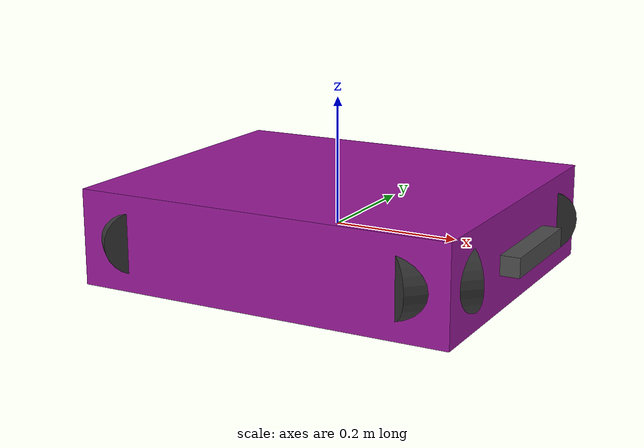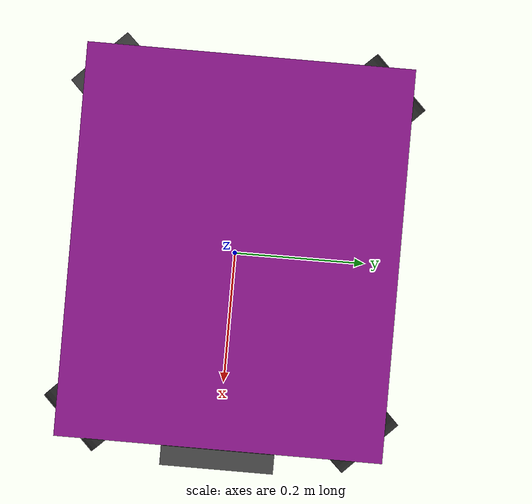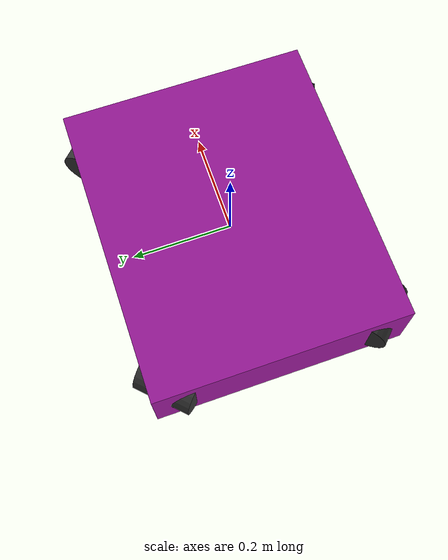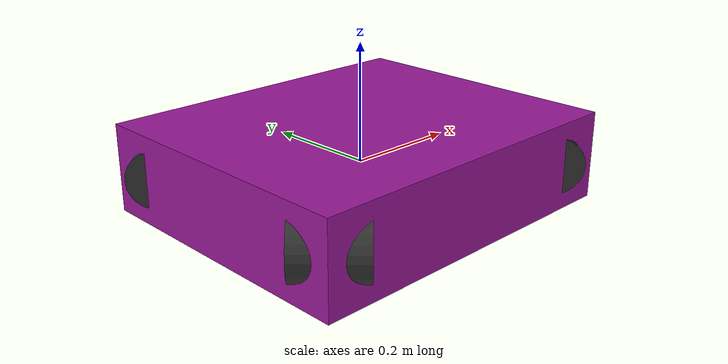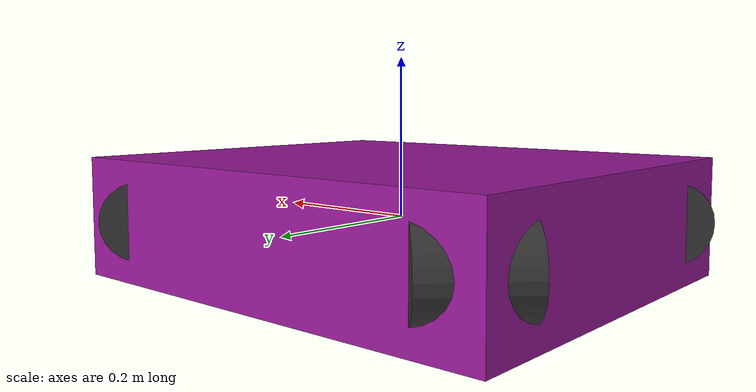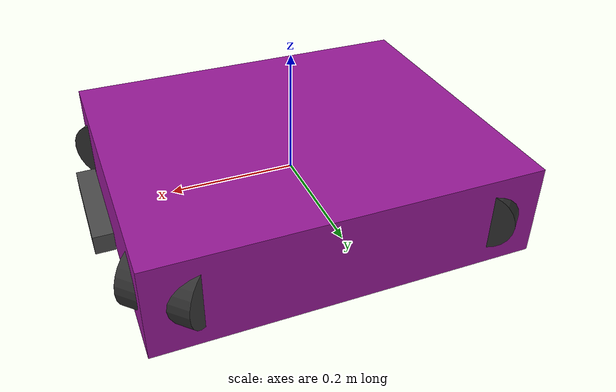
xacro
<?xml version="1.0"?>
<robot name="sunswim" xmlns:xacro="http://www.ros.org/wiki/xacro">
<xacro:arg name="ardusub" default="false"/>
<!--
 ===================== numbers you will edit =====================
-->
<xacro:property name="total_mass" value="15.0"/>
<!-- kg in air, GUESS -->
<xacro:property name="buoyancy_margin" value="0.02"/>
<!-- 2 % positive: floats up slowly, like a real ROV -->
<xacro:property name="com_below_cob" value="0.03"/>
<!--
 m, centre of mass below centre of buoyancy (keeps it upright), GUESS
-->
<xacro:property name="body_length" value="0.60"/>
<xacro:property name="body_width" value="0.50"/>
<xacro:property name="body_height" value="0.15"/>
<!-- Blue Robotics T200-like thruster -->
<xacro:property name="thruster_radius" value="0.04865"/>
<xacro:property name="thruster_length" value="0.1134"/>
<xacro:property name="thruster_mass" value="0.427"/>
<xacro:property name="prop_mass" value="0.05"/>
<xacro:property name="prop_diameter" value="0.076"/>
<!-- m, GUESS -->
<xacro:property name="max_thrust" value="50.0"/>
<!-- N forward, ~5 kgf, GUESS -->
<xacro:property name="min_thrust" value="-40.0"/>
<!-- N reverse, GUESS -->
<!--
 ===================== derived (don't edit) =====================
-->
<xacro:property name="thruster_volume" value="${pi * thruster_radius**2 * thruster_length}"/>
<xacro:property name="thruster_box_side" value="${thruster_radius * pi**0.5}"/>
<!-- side^2 = pi r^2 -->
<xacro:property name="target_volume" value="${total_mass * (1 + buoyancy_margin) / 1000.0}"/>
<xacro:property name="body_collision_height" value="${(target_volume - 8 * thruster_volume) / (body_length * body_width)}"/>
<xacro:property name="camera_mass" value="0.2"/>
<xacro:property name="camera_x" value="${body_length/2 + 0.02}"/>
<xacro:property name="imu_mass" value="0.01"/>
<xacro:property name="imu_x" value="0.1"/>
<xacro:property name="body_mass" value="${total_mass - 8 * (thruster_mass + prop_mass) - camera_mass - imu_mass}"/>
<!--
 trim: shift the body's mass back so camera + IMU up front don't pitch the nose down
-->
<xacro:property name="body_com_x" value="${-(camera_mass * camera_x + imu_mass * imu_x) / body_mass}"/>
<!--
 ===================== macros =====================
-->
<xacro:macro name="box_inertia" params="m x y z ox oz">
    <inertial>
        <origin xyz="${ox} 0 ${oz}" rpy="0 0 0"/>
        <mass value="${m}"/>
        <inertia ixx="${m/12*(y*y+z*z)}" ixy="0" ixz="0" iyy="${m/12*(x*x+z*z)}" iyz="0" izz="${m/12*(x*x+y*y)}"/>
    </inertial>
</xacro:macro>
<xacro:macro name="cyl_inertia" params="m r h">
    <inertial>
        <mass value="${m}"/>
        <inertia ixx="${m/12*(3*r*r+h*h)}" ixy="0" ixz="0" iyy="${m/12*(3*r*r+h*h)}" iyz="0" izz="${m/2*r*r}"/>
    </inertial>
</xacro:macro>
<!-- ===================== body ===================== -->
<link name="base_link">
    <visual>
        <geometry>
            <box size="${body_length} ${body_width} ${body_height}"/>
        </geometry>
        <material name="Purple">
            <color rgba="0.6 0.1 0.6 1.0"/>
        </material>
    </visual>
    <!--
    thin slab: its volume (not its look) sets the buoyancy
    -->
    <collision>
        <geometry>
            <box size="${body_length} ${body_width} ${body_collision_height}"/>
        </geometry>
    </collision>
    <!--
    mass sits a little below the middle so the ROV self-rights
    -->
    <xacro:box_inertia m="${body_mass}" x="${body_length}" y="${body_width}" z="${body_height}" ox="${body_com_x}" oz="${-com_below_cob}"/>
</link>

<gazebo reference="base_link">
    <visual><transparency>0.6</transparency></visual>
</gazebo>
<!--
 ===================== thrusters =====================
-->
<!--
 Thrust acts along the housing's local z axis (the propeller joint axis).
-->
<xacro:macro name="thruster" params="name x y z roll pitch yaw">
<joint name="${name}_housing_joint" type="fixed">
    <parent link="base_link"/>
    <child link="${name}_housing_link"/>
    <origin xyz="${x} ${y} ${z}" rpy="${roll} ${pitch} ${yaw}"/>
</joint>
<link name="${name}_housing_link">
    <visual>
        <geometry>
            <cylinder radius="${thruster_radius}" length="${thruster_length}"/>
        </geometry>
        <material name="DarkGray">
            <color rgba="0.2 0.2 0.2 1.0"/>
        </material>
    </visual>
    <!--
    collision is a BOX with the same volume as the cylinder:
            Gazebo's depth-layered (graded) buoyancy ignores cylinders
    -->
    <collision>
        <geometry>
            <box size="${thruster_box_side} ${thruster_box_side} ${thruster_length}"/>
        </geometry>
    </collision>
    <xacro:cyl_inertia m="${thruster_mass}" r="${thruster_radius}" h="${thruster_length}"/>
</link>
<joint name="${name}_joint" type="continuous">
<parent link="${name}_housing_link"/>
<child link="${name}_prop_link"/>
<origin xyz="0 0 0" rpy="0 0 0"/>
<axis xyz="0 0 1"/>
</joint>
<link name="${name}_prop_link">
    <visual>
    <geometry>
    <cylinder radius="${thruster_radius*0.9}" length="0.01"/>
    </geometry>
    <material name="Black">
    <color rgba="0.05 0.05 0.05 1.0"/>
    </material>
    </visual>
    <!-- no collision: would add fake buoyancy -->
    <xacro:cyl_inertia m="${prop_mass}" r="${thruster_radius}" h="0.01"/>
</link>
<gazebo>
<plugin filename="gz-sim-thruster-system" name="gz::sim::systems::Thruster">
<namespace>sunswim</namespace>
<joint_name>${name}_joint</joint_name>
<thrust_coefficient>0.004422</thrust_coefficient>
<fluid_density>1000</fluid_density>
<propeller_diameter>${prop_diameter}</propeller_diameter>
<max_thrust_cmd>${max_thrust}</max_thrust_cmd>
<min_thrust_cmd>${min_thrust}</min_thrust_cmd>
</plugin>
</gazebo>
</xacro:macro>
<xacro:property name="tx" value="${body_length/2 - 0.05}"/>
<xacro:property name="ty" value="${body_width/2 - 0.05}"/>
<!--
 4 horizontal, vectored at 45 deg (layout from the team xacro)
-->
<xacro:thruster name="thruster_FL" x="${tx}" y="${ty}" z="0" roll="${pi/2}" pitch="0" yaw="${pi/4}"/>
<xacro:thruster name="thruster_FR" x="${tx}" y="${-ty}" z="0" roll="${pi/2}" pitch="0" yaw="${-pi/4}"/>
<xacro:thruster name="thruster_RL" x="${-tx}" y="${ty}" z="0" roll="${pi/2}" pitch="0" yaw="${3*pi/4}"/>
<xacro:thruster name="thruster_RR" x="${-tx}" y="${-ty}" z="0" roll="${pi/2}" pitch="0" yaw="${-3*pi/4}"/>
<!-- 4 vertical (axis = +z, + thrust pushes up) -->
<xacro:thruster name="thruster_VFL" x="${body_length/4-0.05}" y="${ty}" z="0" roll="0" pitch="0" yaw="0"/>
<xacro:thruster name="thruster_VRL" x="${-(body_length/4-0.05)}" y="${ty}" z="0" roll="0" pitch="0" yaw="0"/>
<xacro:thruster name="thruster_VFR" x="${body_length/4-0.05}" y="${-ty}" z="0" roll="0" pitch="0" yaw="0"/>
<xacro:thruster name="thruster_VRR" x="${-(body_length/4-0.05)}" y="${-ty}" z="0" roll="0" pitch="0" yaw="0"/>
<!--
 ===================== forward camera (stands in for the ZED) =====================
-->
<link name="camera_link">
    <visual>
        <geometry>
            <box size="0.03 0.175 0.03"/>
        </geometry>
        <material name="Gray">
            <color rgba="0.3 0.3 0.3 1.0"/>
        </material>
    </visual>
    <inertial>
        <mass value="${camera_mass}"/>
        <inertia ixx="1e-4" ixy="0" ixz="0" iyy="1e-4" iyz="0" izz="1e-4"/>
    </inertial>
</link>
<joint name="camera_joint" type="fixed">
<parent link="base_link"/>
<child link="camera_link"/>
<origin xyz="${camera_x} 0 0" rpy="0 0 0"/>
<!-- just in front of the body -->
</joint>
<gazebo reference="camera_link">
<sensor name="front_camera" type="rgbd_camera">
<always_on>true</always_on>
<update_rate>10</update_rate>
<pose>0.02 0 0 0 0 0</pose>
<!--
 lens just in front of the camera box, not inside it
-->
<topic>cam</topic>
<!--
 gives /cam/image, /cam/depth_image, /cam/camera_info
-->
<gz_frame_id>camera_link</gz_frame_id>
<camera>
<horizontal_fov>1.482</horizontal_fov>
<!-- replace with underwater calibration -->
<image>
<width>1280</width>
<height>720</height>
</image>
<clip>
<near>0.05</near>
<far>25</far>
</clip>
</camera>
</sensor>
</gazebo>
<!-- ===================== IMU ===================== -->
<link name="imu_link">
<inertial>
<mass value="${imu_mass}"/>
<inertia ixx="1e-6" ixy="0" ixz="0" iyy="1e-6" iyz="0" izz="1e-6"/>
</inertial>
</link>
<joint name="imu_joint" type="fixed">
<parent link="base_link"/>
<child link="imu_link"/>
<origin xyz="${imu_x} 0 0.05" rpy="0 0 0"/>
</joint>
<gazebo reference="imu_link">
<sensor name="imu_sensor" type="imu">
<always_on>true</always_on>
<update_rate>100</update_rate>
<topic>imu/data</topic>
<gz_frame_id>imu_link</gz_frame_id>
<imu>
<angular_velocity>
<x>
<noise type="gaussian">
<mean>0</mean>
<stddev>2e-4</stddev>
</noise>
</x>
<y>
<noise type="gaussian">
<mean>0</mean>
<stddev>2e-4</stddev>
</noise>
</y>
<z>
<noise type="gaussian">
<mean>0</mean>
<stddev>2e-4</stddev>
</noise>
</z>
</angular_velocity>
</imu>
</sensor>
</gazebo>
<!--
 ===================== water drag =====================
-->
<!--
 Fossen notation. DAMPING MUST BE NEGATIVE (positive = adds energy).
       u,v,w = surge/sway/heave speed; p,q,r = roll/pitch/yaw rate. All GUESS.
-->
<gazebo>
<plugin filename="gz-sim-hydrodynamics-system" name="gz::sim::systems::Hydrodynamics">
<link_name>base_link</link_name>
<water_density>1000</water_density>
<!--
 added mass: left at 0 for now (non-zero can go unstable; tune later)
-->
<xDotU>0</xDotU>
<yDotV>0</yDotV>
<zDotW>0</zDotW>
<kDotP>0</kDotP>
<mDotQ>0</mDotQ>
<nDotR>0</nDotR>
<!-- linear drag -->
<xU>-10</xU>
<yV>-15</yV>
<zW>-20</zW>
<kP>-2</kP>
<mQ>-2</mQ>
<nR>-2</nR>
<!-- quadratic drag -->
<xUabsU>-30</xUabsU>
<yVabsV>-40</yVabsV>
<zWabsW>-50</zWabsW>
<kPabsP>-3</kPabsP>
<mQabsQ>-3</mQabsQ>
<nRabsR>-3</nRabsR>
</plugin>
<plugin filename="gz-sim-joint-state-publisher-system" name="gz::sim::systems::JointStatePublisher">
<topic>joint_states</topic>
</plugin>
</gazebo>

<xacro:macro name="ap_channel" params="ch joint">
  <control channel="${ch}">
    <jointName>${joint}</jointName>
    <servo_min>1100</servo_min>
    <servo_max>1900</servo_max>
    <type>COMMAND</type>
    <cmd_topic>/model/sunswim/joint/${joint}/cmd_thrust</cmd_topic>
    <offset>-0.5</offset>
    <multiplier>100</multiplier>
  </control>
</xacro:macro>

<xacro:if value="$(arg ardusub)">
  <gazebo>
    <plugin name="ArduPilotPlugin" filename="ArduPilotPlugin">
      <fdm_addr>127.0.0.1</fdm_addr>
      <fdm_port_in>9002</fdm_port_in>
      <connectionTimeoutMaxCount>5</connectionTimeoutMaxCount>
      <lock_step>1</lock_step>
      <modelXYZToAirplaneXForwardZDown>0 0 0 3.141593 0 0</modelXYZToAirplaneXForwardZDown>
      <gazeboXYZToNED>0 0 0 3.141593 0 0</gazeboXYZToNED>
      <imuName>imu_sensor</imuName>
      <!-- GUESS at ArduSub vectored_6dof order: verify in plan step 3 -->
      <xacro:ap_channel ch="0" joint="thruster_FR_joint"/>
      <xacro:ap_channel ch="1" joint="thruster_FL_joint"/>
      <xacro:ap_channel ch="2" joint="thruster_RR_joint"/>
      <xacro:ap_channel ch="3" joint="thruster_RL_joint"/>
      <xacro:ap_channel ch="4" joint="thruster_VFR_joint"/>
      <xacro:ap_channel ch="5" joint="thruster_VFL_joint"/>
      <xacro:ap_channel ch="6" joint="thruster_VRR_joint"/>
      <xacro:ap_channel ch="7" joint="thruster_VRL_joint"/>
    </plugin>
  </gazebo>
</xacro:if>
</robot>
